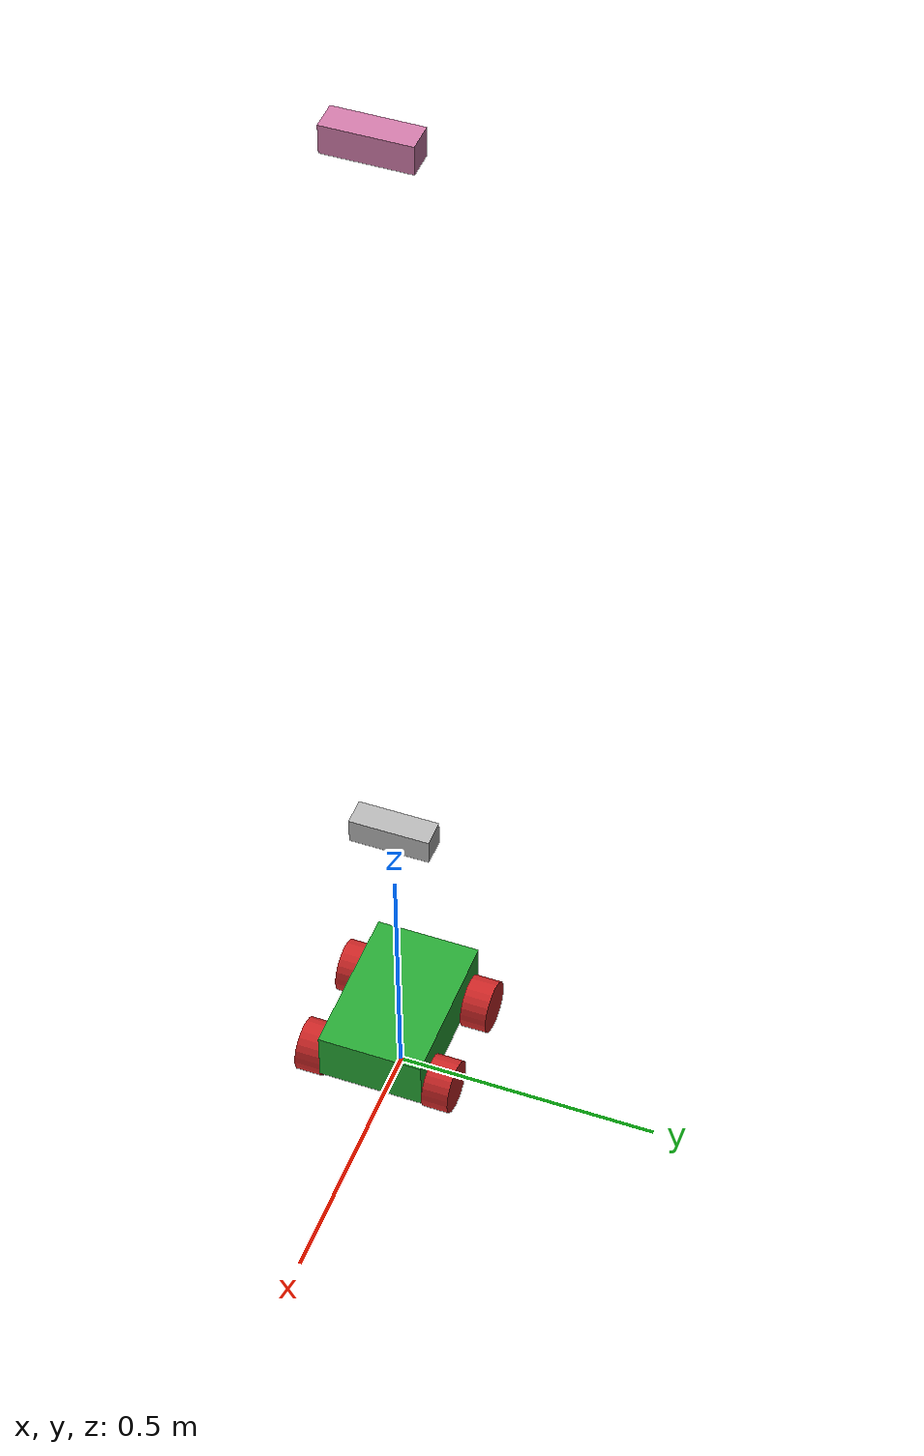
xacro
<?xml version="1.0"?>
<robot xmlns:xacro="http://www.ros.org/wiki/xacro" name="rov_sim">

    <xacro:include filename="$(find rov_description)/src/env/xacro/base_link.xacro" />
    <xacro:include filename="$(find rov_description)/src/env/xacro/wheel.xacro" />
    <xacro:include filename="$(find rov_description)/src/env/xacro/fun_define.xacro" />
    <xacro:include filename="$(find rov_description)/src/env/xacro/camera.xacro" />
    <xacro:include filename="$(find rov_description)/src/env/xacro/zed2.xacro" />
<!--base_footprint->base_link-->
<xacro:myjoint_fixed joint_name="base_footprint_joint" joint_type="fixed" x="0" y="0" z="0.1" wx="0" wz="3.1415926" wy="0" parent_link="base_footprint" child_link="base_link"/>

<!--base_link->wheel_l_f-->
<xacro:myjoint_continuous joint_name="base_to_wheel_l_f" joint_type="continuous" x="0.1" y="0.125" z="0" wx="0" wy="0" wz="0" parent_link="base_link" child_link="wheel_l_f" ax="0" ay="1" az="0"/>

<!--base_link->wheel_r_f-->
<xacro:myjoint_continuous joint_name="base_to_wheel_r_f" joint_type="continuous" x="0.1" y="-0.125" z="0" wx="0" wy="0" wz="0" parent_link="base_link" child_link="wheel_r_f" ax="0" ay="-1" az="0"/>

<!--base_link->wheel_l_b-->
<xacro:myjoint_continuous joint_name="base_to_wheel_l_b" joint_type="continuous" x="-0.1" y="0.125" z="0" wx="0" wy="0" wz="0" parent_link="base_link" child_link="wheel_l_b" ax="0" ay="1" az="0"/>

<!--base_link->wheel_r_b-->
<xacro:myjoint_continuous joint_name="base_to_wheel_r_b" joint_type="continuous" x="-0.1" y="-0.125" z="0" wx="0" wy="0" wz="0" parent_link="base_link" child_link="wheel_r_b" ax="0" ay="-1" az="0"/>

<!-- base_link->camera_link -->
<xacro:myjoint_fixed joint_name="camera_joint" joint_type="fixed" x="0" y="0" z="2" wx="0" wz="0.0" wy="0" parent_link="base_link" child_link="camera_link"/>

<!-- zed -->
<xacro:mylink_tri myname="zed2_link" l="0.05" w="0.15" h="0.05" x="0" y="0" z="0.04" wx="0" wy="0" wz="0" color="red" r="0" g="0" b="0" a="1" mass="0.1" ixx="0.001" ixy="0.0" ixz="0.0" iyy="0.001" iyz="0.0" izz="0.001"/>
<xacro:myjoint_fixed joint_name="zed2_joint" joint_type="fixed" x="0" y="0" z="0.5" wx="0" wz="0.0" wy="0" parent_link="base_link" child_link="zed2_link"/>
<xacro:zed2 youlinkname="zed2_link"/>
<xacro:zed2_gazebo/>

<!-- 每一个驱动轮都需要配置传动装置 -->
    <xacro:joint_trans_v1 joint_name="base_to_wheel_l_f"/>
    <xacro:joint_trans_v1 joint_name="base_to_wheel_l_b" />
    <xacro:joint_trans_v1 joint_name="base_to_wheel_r_f" />
    <xacro:joint_trans_v1 joint_name="base_to_wheel_r_b" />

  <gazebo>
    <plugin name="gazebo_ros_control" filename="libgazebo_ros_control.so">
                <rosDebugLevel>Debug</rosDebugLevel>
                <publishWheelTF>true</publishWheelTF>
                <robotNamespace>/</robotNamespace>
                <robotSimType>gazebo_ros_control/DefaultRobotHWSim</robotSimType>
                <publishTf>1</publishTf>
                <publishWheelJointState>true</publishWheelJointState>
                <alwaysOn>true</alwaysOn>
                <updateRate>100.0</updateRate>
                <legacyMode>true</legacyMode>
    </plugin>
  </gazebo>

<!-- 麦轮控制器 -->
<gazebo>
    <plugin name="mecanum_controller" filename="libgazebo_ros_planar_move.so">
        <commandTopic>cmd_vel</commandTopic>
        <odometryTopic>odom</odometryTopic>
        <odometryFrame>odom</odometryFrame>
        <leftFrontJoint>base_to_wheel_l_f</leftFrontJoint>
        <rightFrontJoint>base_to_wheel_r_f</rightFrontJoint>
        <leftRearJoint>base_to_wheel_l_b</leftRearJoint>
        <rightRearJoint>base_to_wheel_r_b</rightRearJoint>
        <odometryRate>100</odometryRate>
        <robotBaseFrame>base_footprint</robotBaseFrame>
        <broadcastTF>1</broadcastTF>
    </plugin>
</gazebo>

</robot>

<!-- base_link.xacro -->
<robot xmlns:xacro="http://www.ros.org/wiki/xacro" name="base_link">
    <xacro:include filename="$(find rov_description)/src/env/xacro/fun_define.xacro" />

<!--base_link-->
<xacro:mylink_tri myname="base_link" l="0.3" w="0.2" h="0.1" x="0" y="0" z="0.04" wx="0" wy="0" wz="0" color="red" r="255" g="0" b="0" a="1" mass="5" ixx="1" ixy="0.0" ixz="0.0" iyy="1" iyz="0.0" izz="1"/>
<gazebo reference="base_link">
        <material>Gazebo/Green</material>
</gazebo>

<link name="base_footprint">
   </link>

</robot>

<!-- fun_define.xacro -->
<robot xmlns:xacro="http://www.ros.org/wiki/xacro" name="body_define">
<!--常量定义-->
<xacro:property name="M_PI" value="3.1415926535897931" />

<!--定义矩形link-->
<xacro:macro name="mylink_tri" params="myname l w h x y z wx wy wz color r g b a mass ixx ixy ixz iyy iyz izz">
	<link name="${myname}">
	<visual>
		<geometry>
			<box size="${l} ${w} ${h}"/>
		</geometry>
		<origin xyz="${x} ${y} ${z}" rpy="${wx} ${wy} ${wz}"/>
		<meterial name="${color}">
			<color rgba="${r} ${g} ${b} ${a}"/>
		</meterial>
	</visual>
	<collision>
		<geometry>
			<box size="${l} ${w} ${h}"/>
		</geometry>
	</collision>
	<inertial>
		<mass value="${mass}"/>
		<inertia ixx="${ixx}" ixy="${ixy}" ixz="${ixz}" iyy="${iyy}" iyz="${iyz}" izz="${izz}"/>
	</inertial>
	</link>
</xacro:macro>

<!--定义椭圆link-->
<xacro:macro name="mylink_cyl" params="link_name l r_ x y z wx wy wz color r g b a mass ixx ixy ixz iyy iyz izz">
	<link name="${link_name}">
		<visual>
			<geometry>
				<cylinder length="${l}" radius="${r_}"/>
			</geometry>
			<origin xyz="${x} ${y} ${z}" rpy="${wx} ${wy} ${wz}"/>
			<meterial name="${color}">
				<color rgba="${r} ${g} ${b} ${a}"/>
			</meterial>
		</visual>
		<collision>
			<geometry>
				<cylinder length="${l}" radius="${r_}"/>
			</geometry>
		</collision>
		<inertial>
			<mass value="${mass}"/>
			<inertia ixx="${ixx}" ixy="${ixy}" ixz="${ixz}" iyy="${iyy}" iyz="${iyz}" izz="${izz}"/>
		</inertial>
	</link>
</xacro:macro>

<!--定义fixed_joint-->
<xacro:macro name="myjoint_fixed" params="joint_name joint_type x y z wx wz wy parent_link child_link">
	<joint name="${joint_name}" type="${joint_type}">
		<origin xyz="${x} ${y} ${z}" rpy="${wx} ${wy} ${wz}"/>
  		<parent link="${parent_link}"/>
   		<child link="${child_link}"/>
	</joint>
</xacro:macro>

<!--定义continuous_joint-->
<xacro:macro name="myjoint_continuous" params="joint_name joint_type x y z wx wy wz parent_link child_link ax ay az">
	<joint name="${joint_name}" type="${joint_type}">
		<origin xyz="${x} ${y} ${z}" rpy="${wx} ${wy} ${wz}"/>
    		<parent link="${parent_link}" />
    		<child link="${child_link}" />
    		<axis xyz="${ax} ${ay} ${az}"/>
			<hardwareInterface>hardware_interface/EffortJointInterface</hardwareInterface>

	</joint>
</xacro:macro>

<!-- 传动实现:用于连接控制器与关节 -->
    <xacro:macro name="joint_trans_v" params="joint_name">
        <!-- Transmission is important to link the joints and the controller -->
        <transmission name="${joint_name}_trans">
            <type>transmission_interface/SimpleTransmission</type>
            <joint name="${joint_name}">
                <hardwareInterface>hardware_interface/VelocityJointInterface</hardwareInterface>
            </joint>
            <actuator name="${joint_name}_motor">
                <hardwareInterface>hardware_interface/VelocityJointInterface</hardwareInterface>
                <mechanicalReduction>1</mechanicalReduction>
            </actuator>
        </transmission>
    </xacro:macro>
<!-- 传动实现:用于连接控制器与关节 -->
<xacro:macro name="joint_trans_e" params="joint_name">
  <transmission name="trans_${joint_name}">
    <type>transmission_interface/SimpleTransmission</type>
    <actuator name="${joint_name}_motor">
      <mechanicalReduction>1</mechanicalReduction>
    </actuator>
    <joint name="${joint_name}">
      <hardwareInterface>hardware_interface/EffortJointInterface</hardwareInterface>
    </joint>
  </transmission>
</xacro:macro>

<!-- 传动实现:用于连接控制器与关节 -->
<xacro:macro name="joint_trans_v1" params="joint_name">
	<!-- Transmission is important to link the joints and the controller -->
	<transmission name="${joint_name}_trans">
		<type>transmission_interface/SimpleTransmission</type>
		<joint name="${joint_name}">
			<hardwareInterface>hardware_interface/VelocityJointInterface</hardwareInterface>
		</joint>
		<actuator name="${joint_name}_motor">
			<hardwareInterface>hardware_interface/VelocityJointInterface</hardwareInterface>
			<mechanicalReduction>1</mechanicalReduction>
		</actuator>
	</transmission>
</xacro:macro>

</robot>

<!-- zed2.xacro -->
<robot xmlns:xacro="http://ros.org/wiki/xacro">

  <xacro:property name="baseline" value="0.12"/>

  <xacro:macro name="zed2" params="youlinkname">
    <!-- Left Camera -->
    <joint name="zed2_left_camera_joint" type="fixed">
      <parent link="${youlinkname}"/>
      <child link="zed2_left_camera_frame"/>
      <origin xyz="0 ${baseline/2} 0" rpy="0 0 0" />
    </joint>

    <link name="zed2_left_camera_frame" />

    <joint name="zed2_left_camera_optical_joint" type="fixed">
      <origin xyz="0 0 0" rpy="-${pi/2} 0.0 -${pi/2}"/>
      <parent link="zed2_left_camera_frame"/>
      <child link="zed2_left_camera_optical_frame"/>
    </joint>

    <link name="zed2_left_camera_optical_frame"/>

    <!-- Right Camera -->
    <joint name="zed2_right_camera_joint" type="fixed">
      <parent link="${youlinkname}"/>
      <child link="zed2_right_camera_frame"/>
      <origin xyz="0 -${baseline/2} 0" rpy="0 0 0" />
    </joint>

    <link name="zed2_right_camera_frame" />

    <joint name="zed2_right_camera_optical_joint" type="fixed">
      <origin xyz="0 0 0" rpy="-${pi/2} 0.0 -${pi/2}"/>
      <parent link="zed2_right_camera_frame"/>
      <child link="zed2_right_camera_optical_frame"/>
    </joint>

    <link name="zed2_right_camera_optical_frame"/>

    <!-- Sensors -->
    <joint name="zed2_mag_joint" type="fixed">
      <parent link="${youlinkname}"/>
      <child link="zed2_mag_link"/>
      <origin xyz="0 0 0" rpy="0 0 0" />
    </joint>

    <link name="zed2_mag_link" />

    <joint name="zed2_baro_joint" type="fixed">
      <parent link="${youlinkname}"/>
      <child link="zed2_baro_link"/>
      <origin xyz="0 0 0" rpy="0 0 0" />
    </joint>

    <link name="zed2_baro_link" />

    <joint name="zed2_temp_left_joint" type="fixed">
      <parent link="zed2_left_camera_frame"/>
      <child link="zed2_temp_left_link"/>
      <origin xyz="0 0 0" rpy="0 0 0" />
    </joint>

    <link name="zed2_temp_left_link" />

    <joint name="zed2_temp_right_joint" type="fixed">
        <parent link="zed2_right_camera_frame"/>
        <child link="zed2_temp_right_link"/>
        <origin xyz="0 0 0" rpy="0 0 0" />
    </joint>

    <link name="zed2_temp_right_link" />

  </xacro:macro>

  <xacro:macro name="zed2_gazebo">

    <!-- Left/Depth camera -->
    <gazebo reference="zed2_left_camera_frame">
      <!-- Raw images (with lens distortion) -->
      <sensor type="camera" name="zed2_left_raw_camera">
        <always_on>true</always_on>
        <update_rate>15.0</update_rate>
        <visualize>false</visualize>
        <camera name="zed2_left_raw">
          <horizontal_fov>1.7633</horizontal_fov>
          <image>
            <width>1280</width>
            <height>720</height>
            <format>R8G8B8</format>
          </image>
          <clip>
            <near>0.02</near>
            <far>300</far>
          </clip>
          <noise>
            <type>gaussian</type>
            <mean>0.0</mean>
            <stddev>0.007</stddev>
          </noise>
          <distortion>
            <!-- Values copied from an actual ZED2 camera -->
            <k1>-0</k1>
            <k2>0</k2>
            <p1>-0</p1>
            <p2>-0</p2>
            <k3>0</k3>
            <center>0.5 0.5</center>
          </distortion>
        </camera>
        <plugin name="camera_controller" filename="libgazebo_ros_camera.so">
          <robotNamespace>/</robotNamespace>
          <cameraName>zed2/left_raw</cameraName>
          <imageTopicName>image_raw_color</imageTopicName>
          <cameraInfoTopicName>camera_info</cameraInfoTopicName>
          <frameName>zed2_left_camera_optical_frame</frameName>
          <distortionK1>-0</distortionK1>
          <distortionK2>0</distortionK2>
          <distortionT1>-0</distortionT1>
          <distortionT2>-0</distortionT2>
          <distortionK3>0</distortionK3>
          <CxPrime>648.5</CxPrime>
          <Cx>648.5</Cx>
          <Cy>366.8340148925781</Cy>
          <hackBaseline>0.0</hackBaseline>
        </plugin>
      </sensor>

      <sensor type="depth" name="zed2_left_camera">
        <!-- Rectified images, Depth images, Point Clouds -->
        <always_on>true</always_on>
        <update_rate>15.0</update_rate>
        <visualize>false</visualize>
        <camera name="zed2_left">
          <horizontal_fov>1.7633</horizontal_fov>
          <image>
            <width>1280</width>
            <height>720</height>
            <format>R8G8B8</format>
          </image>
          <clip>
            <near>0.02</near>
            <far>300</far>
          </clip>
          <noise>
            <type>gaussian</type>
            <mean>0.0</mean>
            <stddev>0.007</stddev>
          </noise>
        </camera>
        <plugin name="camera_controller" filename="libgazebo_ros_openni_kinect.so">
          <robotNamespace>/</robotNamespace>
          <cameraName>zed2</cameraName>
          <imageTopicName>left/image_rect_color</imageTopicName>
          <cameraInfoTopicName>left/camera_info</cameraInfoTopicName>
          <depthImageTopicName>depth/depth_registered</depthImageTopicName>
          <depthImageInfoTopicName>depth/camera_info</depthImageInfoTopicName>
          <pointCloudTopicName>point_cloud/cloud_registered</pointCloudTopicName>
          <pointCloudCutoff>0.3</pointCloudCutoff>
          <pointCloudCutoffMax>20.0</pointCloudCutoffMax>
          <frameName>zed2_left_camera_optical_frame</frameName>
          <baseline>0.12</baseline>
          <CxPrime>658.8206787109375</CxPrime>
          <Cx>658.8206787109375</Cx>
          <Cy>372.25787353515625</Cy>
          <hackBaseline>0.0</hackBaseline>
        </plugin>
      </sensor>
    </gazebo>

    <!-- Right camera -->
    <gazebo reference="zed2_right_camera_frame">
      <!-- Raw images (with lens distortion) -->
      <sensor type="camera" name="zed2_right_raw_camera">
        <always_on>true</always_on>
        <update_rate>15.0</update_rate>
        <visualize>false</visualize>
        <camera name="zed2_right_raw">
          <horizontal_fov>1.7633</horizontal_fov>
          <image>
            <width>1280</width>
            <height>720</height>
            <format>R8G8B8</format>
          </image>
          <clip>
            <near>0.02</near>
            <far>300</far>
          </clip>
          <noise>
            <type>gaussian</type>
            <mean>0.0</mean>
            <stddev>0.007</stddev>
          </noise>
          <distortion>
            <k1>0</k1>
            <k2>0</k2>
            <p1>-0</p1>
            <p2>0</p2>
            <k3>-0</k3>
            <center>0.5 0.5</center>
          </distortion>
        </camera>
        <plugin name="camera_controller" filename="libgazebo_ros_camera.so">
          <robotNamespace>/</robotNamespace>
          <cameraName>zed2/right_raw</cameraName>
          <imageTopicName>image_raw_color</imageTopicName>
          <cameraInfoTopicName>camera_info</cameraInfoTopicName>
          <frameName>zed2_right_camera_optical_frame</frameName>
          <distortionK1>-0</distortionK1>
          <distortionK2>0</distortionK2>
          <distortionT1>-0</distortionT1>
          <distortionT2>0</distortionT2>
          <distortionK3>-0</distortionK3>
          <CxPrime>659.3049926757812</CxPrime>
          <Cx>659.3049926757812</Cx>
          <Cy>371.39849853515625</Cy>
          <hackBaseline>0.12</hackBaseline>
        </plugin>
      </sensor>

      <sensor type="camera" name="zed2_right_camera">
        <!-- Rectified images -->
        <always_on>true</always_on>
        <update_rate>15.0</update_rate>
        <visualize>false</visualize>
        <camera name="zed2_right">
          <horizontal_fov>1.7633</horizontal_fov>
          <image>
            <width>1280</width>
            <height>720</height>
            <format>R8G8B8</format>
          </image>
          <clip>
            <near>0.02</near>
            <far>300</far>
          </clip>
          <noise>
            <type>gaussian</type>
            <mean>0.0</mean>
            <stddev>0.007</stddev>
          </noise>
        </camera>
        <plugin name="camera_controller" filename="libgazebo_ros_camera.so">
          <robotNamespace>/</robotNamespace>
          <cameraName>zed2/right</cameraName>
          <imageTopicName>image_rect_color</imageTopicName>
          <cameraInfoTopicName>camera_info</cameraInfoTopicName>
          <frameName>zed2_right_camera_optical_frame</frameName>
          <CxPrime>658.8206787109375</CxPrime>
          <Cx>658.8206787109375</Cx>
          <Cy>372.25787353515625</Cy>
          <hackBaseline>0.12</hackBaseline>
        </plugin>
      </sensor>
    </gazebo>

    <!-- IMU -->
    <gazebo reference="zed2_left_camera_frame">
      <sensor type="imu" name="zed2_imu_sensor">
        <update_rate>100</update_rate>
        <plugin filename="libgazebo_ros_imu_sensor.so" name="imu_plugin">
          <robotNamespace>/</robotNamespace>
          <topicName>zed2/imu/data</topicName>
          <frameName>zed2_imu_link</frameName>
          <updateRateHZ>100.0</updateRateHZ>
          <gaussianNoise>0.01</gaussianNoise>
          <initialOrientationAsReference>false</initialOrientationAsReference>
          <!-- IMU frame offset copied from an actual ZED2 camera -->
          <xyzOffset>-0.002 -0.023 -0.002</xyzOffset>
          <rpyOffset>0.0014025 -0.0000012 -0.0016915</rpyOffset>
        </plugin>
      </sensor>
    </gazebo>

  </xacro:macro>

</robot>
